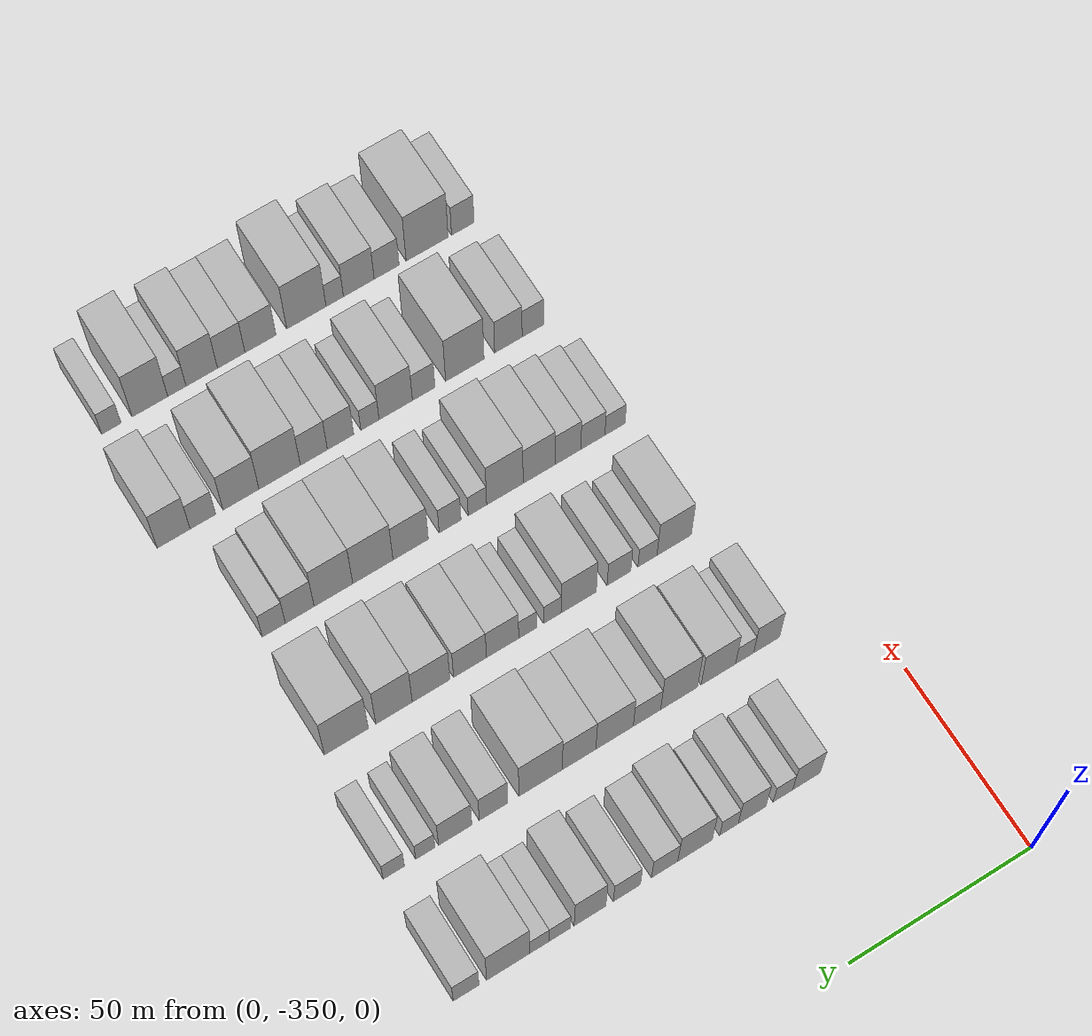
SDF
<sdf version="1.6">
 <world name="default">
  <model name="building_26">
   <static>1</static>
   <pose>50.0000 -315.4722 0 0.000000 0.000000 0.000000</pose>
   <link name="link">
    <pose>0 0 9.00 0 0 0</pose>
    <collision name="collision"><geometry><box><size>20.0000 7.5762 18.0000</size></box></geometry></collision>
    <visual name="visual">
     <cast_shadows>0</cast_shadows>
     <geometry><box><size>20.0000 7.5762 18.0000</size></box></geometry>
     <material>
      <script>
       <uri>model://HANNAS_wall/materials/scripts</uri>
       <uri>model://HANNAS_wall/materials/textures</uri>
       <name>vrc/HANNAS_wall</name>
      </script>
     </material>
    </visual>
   </link>
  </model>
  <model name="building_27">
   <static>1</static>
   <pose>50.0000 -309.0196 0 0.000000 0.000000 0.000000</pose>
   <link name="link">
    <pose>0 0 6.00 0 0 0</pose>
    <collision name="collision"><geometry><box><size>20.0000 5.3289 12.0000</size></box></geometry></collision>
    <visual name="visual">
     <cast_shadows>0</cast_shadows>
     <geometry><box><size>20.0000 5.3289 12.0000</size></box></geometry>
     <material>
      <script>
       <uri>model://HANNAS_wall/materials/scripts</uri>
       <uri>model://HANNAS_wall/materials/textures</uri>
       <name>vrc/HANNAS_wall</name>
      </script>
     </material>
    </visual>
   </link>
  </model>
  <model name="building_28">
   <static>1</static>
   <pose>50.0000 -300.5879 0 0.000000 0.000000 0.000000</pose>
   <link name="link">
    <pose>0 0 9.00 0 0 0</pose>
    <collision name="collision"><geometry><box><size>20.0000 7.5346 18.0000</size></box></geometry></collision>
    <visual name="visual">
     <cast_shadows>0</cast_shadows>
     <geometry><box><size>20.0000 7.5346 18.0000</size></box></geometry>
     <material>
      <script>
       <uri>model://HANNAS_wall/materials/scripts</uri>
       <uri>model://HANNAS_wall/materials/textures</uri>
       <name>vrc/HANNAS_wall</name>
      </script>
     </material>
    </visual>
   </link>
  </model>
  <model name="building_29">
   <static>1</static>
   <pose>50.0000 -294.2849 0 0.000000 0.000000 0.000000</pose>
   <link name="link">
    <pose>0 0 6.00 0 0 0</pose>
    <collision name="collision"><geometry><box><size>20.0000 5.0713 12.0000</size></box></geometry></collision>
    <visual name="visual">
     <cast_shadows>0</cast_shadows>
     <geometry><box><size>20.0000 5.0713 12.0000</size></box></geometry>
     <material>
      <script>
       <uri>model://HANNAS_wall/materials/scripts</uri>
       <uri>model://HANNAS_wall/materials/textures</uri>
       <name>vrc/HANNAS_wall</name>
      </script>
     </material>
    </visual>
   </link>
  </model>
  <model name="building_30">
   <static>1</static>
   <pose>50.0000 -285.0943 0 0.000000 0.000000 0.000000</pose>
   <link name="link">
    <pose>0 0 10.50 0 0 0</pose>
    <collision name="collision"><geometry><box><size>20.0000 9.3099 21.0000</size></box></geometry></collision>
    <visual name="visual">
     <cast_shadows>0</cast_shadows>
     <geometry><box><size>20.0000 9.3099 21.0000</size></box></geometry>
     <material>
      <script>
       <uri>model://HANNAS_wall/materials/scripts</uri>
       <uri>model://HANNAS_wall/materials/textures</uri>
       <name>vrc/HANNAS_wall</name>
      </script>
     </material>
    </visual>
   </link>
  </model>
  <model name="building_31">
   <static>1</static>
   <pose>50.0000 -276.8961 0 0.000000 0.000000 0.000000</pose>
   <link name="link">
    <pose>0 0 7.50 0 0 0</pose>
    <collision name="collision"><geometry><box><size>20.0000 7.0864 15.0000</size></box></geometry></collision>
    <visual name="visual">
     <cast_shadows>0</cast_shadows>
     <geometry><box><size>20.0000 7.0864 15.0000</size></box></geometry>
     <material>
      <script>
       <uri>model://HANNAS_wall/materials/scripts</uri>
       <uri>model://HANNAS_wall/materials/textures</uri>
       <name>vrc/HANNAS_wall</name>
      </script>
     </material>
    </visual>
   </link>
  </model>
  <model name="building_32">
   <static>1</static>
   <pose>50.0000 -266.7148 0 0.000000 0.000000 0.000000</pose>
   <link name="link">
    <pose>0 0 7.50 0 0 0</pose>
    <collision name="collision"><geometry><box><size>20.0000 7.2762 15.0000</size></box></geometry></collision>
    <visual name="visual">
     <cast_shadows>0</cast_shadows>
     <geometry><box><size>20.0000 7.2762 15.0000</size></box></geometry>
     <material>
      <script>
       <uri>model://HANNAS_wall/materials/scripts</uri>
       <uri>model://HANNAS_wall/materials/textures</uri>
       <name>vrc/HANNAS_wall</name>
      </script>
     </material>
    </visual>
   </link>
  </model>
  <model name="building_33">
   <static>1</static>
   <pose>50.0000 -256.8597 0 0.000000 0.000000 0.000000</pose>
   <link name="link">
    <pose>0 0 10.50 0 0 0</pose>
    <collision name="collision"><geometry><box><size>20.0000 8.4340 21.0000</size></box></geometry></collision>
    <visual name="visual">
     <cast_shadows>0</cast_shadows>
     <geometry><box><size>20.0000 8.4340 21.0000</size></box></geometry>
     <material>
      <script>
       <uri>model://HANNAS_wall/materials/scripts</uri>
       <uri>model://HANNAS_wall/materials/textures</uri>
       <name>vrc/HANNAS_wall</name>
      </script>
     </material>
    </visual>
   </link>
  </model>
  <model name="building_34">
   <static>1</static>
   <pose>50.0000 -248.8323 0 0.000000 0.000000 0.000000</pose>
   <link name="link">
    <pose>0 0 6.00 0 0 0</pose>
    <collision name="collision"><geometry><box><size>20.0000 5.6208 12.0000</size></box></geometry></collision>
    <visual name="visual">
     <cast_shadows>0</cast_shadows>
     <geometry><box><size>20.0000 5.6208 12.0000</size></box></geometry>
     <material>
      <script>
       <uri>model://HANNAS_wall/materials/scripts</uri>
       <uri>model://HANNAS_wall/materials/textures</uri>
       <name>vrc/HANNAS_wall</name>
      </script>
     </material>
    </visual>
   </link>
  </model>
  <model name="building_35">
   <static>1</static>
   <pose>50.0000 -243.4255 0 0.000000 0.000000 0.000000</pose>
   <link name="link">
    <pose>0 0 6.00 0 0 0</pose>
    <collision name="collision"><geometry><box><size>20.0000 5.1930 12.0000</size></box></geometry></collision>
    <visual name="visual">
     <cast_shadows>0</cast_shadows>
     <geometry><box><size>20.0000 5.1930 12.0000</size></box></geometry>
     <material>
      <script>
       <uri>model://HANNAS_wall/materials/scripts</uri>
       <uri>model://HANNAS_wall/materials/textures</uri>
       <name>vrc/HANNAS_wall</name>
      </script>
     </material>
    </visual>
   </link>
  </model>
  <model name="building_36">
   <static>1</static>
   <pose>50.0000 -235.1655 0 0.000000 0.000000 0.000000</pose>
   <link name="link">
    <pose>0 0 12.00 0 0 0</pose>
    <collision name="collision"><geometry><box><size>20.0000 11.3268 24.0000</size></box></geometry></collision>
    <visual name="visual">
     <cast_shadows>0</cast_shadows>
     <geometry><box><size>20.0000 11.3268 24.0000</size></box></geometry>
     <material>
      <script>
       <uri>model://HANNAS_wall/materials/scripts</uri>
       <uri>model://HANNAS_wall/materials/textures</uri>
       <name>vrc/HANNAS_wall</name>
      </script>
     </material>
    </visual>
   </link>
  </model>
  <model name="building_37">
   <static>1</static>
   <pose>50.0000 -224.1235 0 0.000000 0.000000 0.000000</pose>
   <link name="link">
    <pose>0 0 7.50 0 0 0</pose>
    <collision name="collision"><geometry><box><size>20.0000 6.7573 15.0000</size></box></geometry></collision>
    <visual name="visual">
     <cast_shadows>0</cast_shadows>
     <geometry><box><size>20.0000 6.7573 15.0000</size></box></geometry>
     <material>
      <script>
       <uri>model://HANNAS_wall/materials/scripts</uri>
       <uri>model://HANNAS_wall/materials/textures</uri>
       <name>vrc/HANNAS_wall</name>
      </script>
     </material>
    </visual>
   </link>
  </model>
  <model name="building_147">
   <static>1</static>
   <pose>82.0000 -325.9047 0 0.000000 0.000000 0.000000</pose>
   <link name="link">
    <pose>0 0 9.00 0 0 0</pose>
    <collision name="collision"><geometry><box><size>20.0000 7.2224 18.0000</size></box></geometry></collision>
    <visual name="visual">
     <cast_shadows>0</cast_shadows>
     <geometry><box><size>20.0000 7.2224 18.0000</size></box></geometry>
     <material>
      <script>
       <uri>model://HANNAS_wall/materials/scripts</uri>
       <uri>model://HANNAS_wall/materials/textures</uri>
       <name>vrc/HANNAS_wall</name>
      </script>
     </material>
    </visual>
   </link>
  </model>
  <model name="building_148">
   <static>1</static>
   <pose>82.0000 -319.7768 0 0.000000 0.000000 0.000000</pose>
   <link name="link">
    <pose>0 0 6.00 0 0 0</pose>
    <collision name="collision"><geometry><box><size>20.0000 5.0333 12.0000</size></box></geometry></collision>
    <visual name="visual">
     <cast_shadows>0</cast_shadows>
     <geometry><box><size>20.0000 5.0333 12.0000</size></box></geometry>
     <material>
      <script>
       <uri>model://HANNAS_wall/materials/scripts</uri>
       <uri>model://HANNAS_wall/materials/textures</uri>
       <name>vrc/HANNAS_wall</name>
      </script>
     </material>
    </visual>
   </link>
  </model>
  <model name="building_149">
   <static>1</static>
   <pose>82.0000 -312.5025 0 0.000000 0.000000 0.000000</pose>
   <link name="link">
    <pose>0 0 10.50 0 0 0</pose>
    <collision name="collision"><geometry><box><size>20.0000 9.5154 21.0000</size></box></geometry></collision>
    <visual name="visual">
     <cast_shadows>0</cast_shadows>
     <geometry><box><size>20.0000 9.5154 21.0000</size></box></geometry>
     <material>
      <script>
       <uri>model://HANNAS_wall/materials/scripts</uri>
       <uri>model://HANNAS_wall/materials/textures</uri>
       <name>vrc/HANNAS_wall</name>
      </script>
     </material>
    </visual>
   </link>
  </model>
  <model name="building_150">
   <static>1</static>
   <pose>82.0000 -301.6647 0 0.000000 0.000000 0.000000</pose>
   <link name="link">
    <pose>0 0 12.00 0 0 0</pose>
    <collision name="collision"><geometry><box><size>20.0000 10.1601 24.0000</size></box></geometry></collision>
    <visual name="visual">
     <cast_shadows>0</cast_shadows>
     <geometry><box><size>20.0000 10.1601 24.0000</size></box></geometry>
     <material>
      <script>
       <uri>model://HANNAS_wall/materials/scripts</uri>
       <uri>model://HANNAS_wall/materials/textures</uri>
       <name>vrc/HANNAS_wall</name>
      </script>
     </material>
    </visual>
   </link>
  </model>
  <model name="building_151">
   <static>1</static>
   <pose>82.0000 -292.8367 0 0.000000 0.000000 0.000000</pose>
   <link name="link">
    <pose>0 0 7.50 0 0 0</pose>
    <collision name="collision"><geometry><box><size>20.0000 7.4959 15.0000</size></box></geometry></collision>
    <visual name="visual">
     <cast_shadows>0</cast_shadows>
     <geometry><box><size>20.0000 7.4959 15.0000</size></box></geometry>
     <material>
      <script>
       <uri>model://HANNAS_wall/materials/scripts</uri>
       <uri>model://HANNAS_wall/materials/textures</uri>
       <name>vrc/HANNAS_wall</name>
      </script>
     </material>
    </visual>
   </link>
  </model>
  <model name="building_152">
   <static>1</static>
   <pose>82.0000 -283.9861 0 0.000000 0.000000 0.000000</pose>
   <link name="link">
    <pose>0 0 10.50 0 0 0</pose>
    <collision name="collision"><geometry><box><size>20.0000 10.2051 21.0000</size></box></geometry></collision>
    <visual name="visual">
     <cast_shadows>0</cast_shadows>
     <geometry><box><size>20.0000 10.2051 21.0000</size></box></geometry>
     <material>
      <script>
       <uri>model://HANNAS_wall/materials/scripts</uri>
       <uri>model://HANNAS_wall/materials/textures</uri>
       <name>vrc/HANNAS_wall</name>
      </script>
     </material>
    </visual>
   </link>
  </model>
  <model name="building_153">
   <static>1</static>
   <pose>82.0000 -274.3161 0 0.000000 0.000000 0.000000</pose>
   <link name="link">
    <pose>0 0 10.50 0 0 0</pose>
    <collision name="collision"><geometry><box><size>20.0000 9.1350 21.0000</size></box></geometry></collision>
    <visual name="visual">
     <cast_shadows>0</cast_shadows>
     <geometry><box><size>20.0000 9.1350 21.0000</size></box></geometry>
     <material>
      <script>
       <uri>model://HANNAS_wall/materials/scripts</uri>
       <uri>model://HANNAS_wall/materials/textures</uri>
       <name>vrc/HANNAS_wall</name>
      </script>
     </material>
    </visual>
   </link>
  </model>
  <model name="building_154">
   <static>1</static>
   <pose>82.0000 -263.9034 0 0.000000 0.000000 0.000000</pose>
   <link name="link">
    <pose>0 0 12.00 0 0 0</pose>
    <collision name="collision"><geometry><box><size>20.0000 11.6902 24.0000</size></box></geometry></collision>
    <visual name="visual">
     <cast_shadows>0</cast_shadows>
     <geometry><box><size>20.0000 11.6902 24.0000</size></box></geometry>
     <material>
      <script>
       <uri>model://HANNAS_wall/materials/scripts</uri>
       <uri>model://HANNAS_wall/materials/textures</uri>
       <name>vrc/HANNAS_wall</name>
      </script>
     </material>
    </visual>
   </link>
  </model>
  <model name="building_155">
   <static>1</static>
   <pose>82.0000 -251.2554 0 0.000000 0.000000 0.000000</pose>
   <link name="link">
    <pose>0 0 9.00 0 0 0</pose>
    <collision name="collision"><geometry><box><size>20.0000 7.6059 18.0000</size></box></geometry></collision>
    <visual name="visual">
     <cast_shadows>0</cast_shadows>
     <geometry><box><size>20.0000 7.6059 18.0000</size></box></geometry>
     <material>
      <script>
       <uri>model://HANNAS_wall/materials/scripts</uri>
       <uri>model://HANNAS_wall/materials/textures</uri>
       <name>vrc/HANNAS_wall</name>
      </script>
     </material>
    </visual>
   </link>
  </model>
  <model name="building_156">
   <static>1</static>
   <pose>82.0000 -241.0361 0 0.000000 0.000000 0.000000</pose>
   <link name="link">
    <pose>0 0 9.00 0 0 0</pose>
    <collision name="collision"><geometry><box><size>20.0000 8.8327 18.0000</size></box></geometry></collision>
    <visual name="visual">
     <cast_shadows>0</cast_shadows>
     <geometry><box><size>20.0000 8.8327 18.0000</size></box></geometry>
     <material>
      <script>
       <uri>model://HANNAS_wall/materials/scripts</uri>
       <uri>model://HANNAS_wall/materials/textures</uri>
       <name>vrc/HANNAS_wall</name>
      </script>
     </material>
    </visual>
   </link>
  </model>
  <model name="building_157">
   <static>1</static>
   <pose>82.0000 -233.0860 0 0.000000 0.000000 0.000000</pose>
   <link name="link">
    <pose>0 0 6.00 0 0 0</pose>
    <collision name="collision"><geometry><box><size>20.0000 5.0675 12.0000</size></box></geometry></collision>
    <visual name="visual">
     <cast_shadows>0</cast_shadows>
     <geometry><box><size>20.0000 5.0675 12.0000</size></box></geometry>
     <material>
      <script>
       <uri>model://HANNAS_wall/materials/scripts</uri>
       <uri>model://HANNAS_wall/materials/textures</uri>
       <name>vrc/HANNAS_wall</name>
      </script>
     </material>
    </visual>
   </link>
  </model>
  <model name="building_158">
   <static>1</static>
   <pose>82.0000 -224.7359 0 0.000000 0.000000 0.000000</pose>
   <link name="link">
    <pose>0 0 6.00 0 0 0</pose>
    <collision name="collision"><geometry><box><size>20.0000 5.6326 12.0000</size></box></geometry></collision>
    <visual name="visual">
     <cast_shadows>0</cast_shadows>
     <geometry><box><size>20.0000 5.6326 12.0000</size></box></geometry>
     <material>
      <script>
       <uri>model://HANNAS_wall/materials/scripts</uri>
       <uri>model://HANNAS_wall/materials/textures</uri>
       <name>vrc/HANNAS_wall</name>
      </script>
     </material>
    </visual>
   </link>
  </model>
  <model name="building_263">
   <static>1</static>
   <pose>114.0000 -321.1570 0 0.000000 0.000000 0.000000</pose>
   <link name="link">
    <pose>0 0 10.50 0 0 0</pose>
    <collision name="collision"><geometry><box><size>20.0000 9.5963 21.0000</size></box></geometry></collision>
    <visual name="visual">
     <cast_shadows>0</cast_shadows>
     <geometry><box><size>20.0000 9.5963 21.0000</size></box></geometry>
     <material>
      <script>
       <uri>model://HANNAS_wall/materials/scripts</uri>
       <uri>model://HANNAS_wall/materials/textures</uri>
       <name>vrc/HANNAS_wall</name>
      </script>
     </material>
    </visual>
   </link>
  </model>
  <model name="building_264">
   <static>1</static>
   <pose>114.0000 -313.6998 0 0.000000 0.000000 0.000000</pose>
   <link name="link">
    <pose>0 0 6.00 0 0 0</pose>
    <collision name="collision"><geometry><box><size>20.0000 5.3181 12.0000</size></box></geometry></collision>
    <visual name="visual">
     <cast_shadows>0</cast_shadows>
     <geometry><box><size>20.0000 5.3181 12.0000</size></box></geometry>
     <material>
      <script>
       <uri>model://HANNAS_wall/materials/scripts</uri>
       <uri>model://HANNAS_wall/materials/textures</uri>
       <name>vrc/HANNAS_wall</name>
      </script>
     </material>
    </visual>
   </link>
  </model>
  <model name="building_265">
   <static>1</static>
   <pose>114.0000 -305.7494 0 0.000000 0.000000 0.000000</pose>
   <link name="link">
    <pose>0 0 7.50 0 0 0</pose>
    <collision name="collision"><geometry><box><size>20.0000 6.5827 15.0000</size></box></geometry></collision>
    <visual name="visual">
     <cast_shadows>0</cast_shadows>
     <geometry><box><size>20.0000 6.5827 15.0000</size></box></geometry>
     <material>
      <script>
       <uri>model://HANNAS_wall/materials/scripts</uri>
       <uri>model://HANNAS_wall/materials/textures</uri>
       <name>vrc/HANNAS_wall</name>
      </script>
     </material>
    </visual>
   </link>
  </model>
  <model name="building_266">
   <static>1</static>
   <pose>114.0000 -294.5962 0 0.000000 0.000000 0.000000</pose>
   <link name="link">
    <pose>0 0 10.50 0 0 0</pose>
    <collision name="collision"><geometry><box><size>20.0000 9.7236 21.0000</size></box></geometry></collision>
    <visual name="visual">
     <cast_shadows>0</cast_shadows>
     <geometry><box><size>20.0000 9.7236 21.0000</size></box></geometry>
     <material>
      <script>
       <uri>model://HANNAS_wall/materials/scripts</uri>
       <uri>model://HANNAS_wall/materials/textures</uri>
       <name>vrc/HANNAS_wall</name>
      </script>
     </material>
    </visual>
   </link>
  </model>
  <model name="building_267">
   <static>1</static>
   <pose>114.0000 -287.3215 0 0.000000 0.000000 0.000000</pose>
   <link name="link">
    <pose>0 0 6.00 0 0 0</pose>
    <collision name="collision"><geometry><box><size>20.0000 4.8258 12.0000</size></box></geometry></collision>
    <visual name="visual">
     <cast_shadows>0</cast_shadows>
     <geometry><box><size>20.0000 4.8258 12.0000</size></box></geometry>
     <material>
      <script>
       <uri>model://HANNAS_wall/materials/scripts</uri>
       <uri>model://HANNAS_wall/materials/textures</uri>
       <name>vrc/HANNAS_wall</name>
      </script>
     </material>
    </visual>
   </link>
  </model>
  <model name="building_268">
   <static>1</static>
   <pose>114.0000 -280.4950 0 0.000000 0.000000 0.000000</pose>
   <link name="link">
    <pose>0 0 6.00 0 0 0</pose>
    <collision name="collision"><geometry><box><size>20.0000 4.8273 12.0000</size></box></geometry></collision>
    <visual name="visual">
     <cast_shadows>0</cast_shadows>
     <geometry><box><size>20.0000 4.8273 12.0000</size></box></geometry>
     <material>
      <script>
       <uri>model://HANNAS_wall/materials/scripts</uri>
       <uri>model://HANNAS_wall/materials/textures</uri>
       <name>vrc/HANNAS_wall</name>
      </script>
     </material>
    </visual>
   </link>
  </model>
  <model name="building_269">
   <static>1</static>
   <pose>114.0000 -273.6799 0 0.000000 0.000000 0.000000</pose>
   <link name="link">
    <pose>0 0 9.00 0 0 0</pose>
    <collision name="collision"><geometry><box><size>20.0000 8.8029 18.0000</size></box></geometry></collision>
    <visual name="visual">
     <cast_shadows>0</cast_shadows>
     <geometry><box><size>20.0000 8.8029 18.0000</size></box></geometry>
     <material>
      <script>
       <uri>model://HANNAS_wall/materials/scripts</uri>
       <uri>model://HANNAS_wall/materials/textures</uri>
       <name>vrc/HANNAS_wall</name>
      </script>
     </material>
    </visual>
   </link>
  </model>
  <model name="building_270">
   <static>1</static>
   <pose>114.0000 -264.8125 0 0.000000 0.000000 0.000000</pose>
   <link name="link">
    <pose>0 0 9.00 0 0 0</pose>
    <collision name="collision"><geometry><box><size>20.0000 8.9320 18.0000</size></box></geometry></collision>
    <visual name="visual">
     <cast_shadows>0</cast_shadows>
     <geometry><box><size>20.0000 8.9320 18.0000</size></box></geometry>
     <material>
      <script>
       <uri>model://HANNAS_wall/materials/scripts</uri>
       <uri>model://HANNAS_wall/materials/textures</uri>
       <name>vrc/HANNAS_wall</name>
      </script>
     </material>
    </visual>
   </link>
  </model>
  <model name="building_271">
   <static>1</static>
   <pose>114.0000 -254.2578 0 0.000000 0.000000 0.000000</pose>
   <link name="link">
    <pose>0 0 10.50 0 0 0</pose>
    <collision name="collision"><geometry><box><size>20.0000 10.1773 21.0000</size></box></geometry></collision>
    <visual name="visual">
     <cast_shadows>0</cast_shadows>
     <geometry><box><size>20.0000 10.1773 21.0000</size></box></geometry>
     <material>
      <script>
       <uri>model://HANNAS_wall/materials/scripts</uri>
       <uri>model://HANNAS_wall/materials/textures</uri>
       <name>vrc/HANNAS_wall</name>
      </script>
     </material>
    </visual>
   </link>
  </model>
  <model name="building_272">
   <static>1</static>
   <pose>114.0000 -244.2541 0 0.000000 0.000000 0.000000</pose>
   <link name="link">
    <pose>0 0 12.00 0 0 0</pose>
    <collision name="collision"><geometry><box><size>20.0000 9.8301 24.0000</size></box></geometry></collision>
    <visual name="visual">
     <cast_shadows>0</cast_shadows>
     <geometry><box><size>20.0000 9.8301 24.0000</size></box></geometry>
     <material>
      <script>
       <uri>model://HANNAS_wall/materials/scripts</uri>
       <uri>model://HANNAS_wall/materials/textures</uri>
       <name>vrc/HANNAS_wall</name>
      </script>
     </material>
    </visual>
   </link>
  </model>
  <model name="building_273">
   <static>1</static>
   <pose>114.0000 -231.4570 0 0.000000 0.000000 0.000000</pose>
   <link name="link">
    <pose>0 0 12.00 0 0 0</pose>
    <collision name="collision"><geometry><box><size>20.0000 11.7640 24.0000</size></box></geometry></collision>
    <visual name="visual">
     <cast_shadows>0</cast_shadows>
     <geometry><box><size>20.0000 11.7640 24.0000</size></box></geometry>
     <material>
      <script>
       <uri>model://HANNAS_wall/materials/scripts</uri>
       <uri>model://HANNAS_wall/materials/textures</uri>
       <name>vrc/HANNAS_wall</name>
      </script>
     </material>
    </visual>
   </link>
  </model>
  <model name="building_383">
   <static>1</static>
   <pose>146.0000 -325.2021 0 0.000000 0.000000 0.000000</pose>
   <link name="link">
    <pose>0 0 6.00 0 0 0</pose>
    <collision name="collision"><geometry><box><size>20.0000 5.6984 12.0000</size></box></geometry></collision>
    <visual name="visual">
     <cast_shadows>0</cast_shadows>
     <geometry><box><size>20.0000 5.6984 12.0000</size></box></geometry>
     <material>
      <script>
       <uri>model://HANNAS_wall/materials/scripts</uri>
       <uri>model://HANNAS_wall/materials/textures</uri>
       <name>vrc/HANNAS_wall</name>
      </script>
     </material>
    </visual>
   </link>
  </model>
  <model name="building_384">
   <static>1</static>
   <pose>146.0000 -318.9389 0 0.000000 0.000000 0.000000</pose>
   <link name="link">
    <pose>0 0 7.50 0 0 0</pose>
    <collision name="collision"><geometry><box><size>20.0000 6.8280 15.0000</size></box></geometry></collision>
    <visual name="visual">
     <cast_shadows>0</cast_shadows>
     <geometry><box><size>20.0000 6.8280 15.0000</size></box></geometry>
     <material>
      <script>
       <uri>model://HANNAS_wall/materials/scripts</uri>
       <uri>model://HANNAS_wall/materials/textures</uri>
       <name>vrc/HANNAS_wall</name>
      </script>
     </material>
    </visual>
   </link>
  </model>
  <model name="building_385">
   <static>1</static>
   <pose>146.0000 -311.9153 0 0.000000 0.000000 0.000000</pose>
   <link name="link">
    <pose>0 0 9.00 0 0 0</pose>
    <collision name="collision"><geometry><box><size>20.0000 7.2192 18.0000</size></box></geometry></collision>
    <visual name="visual">
     <cast_shadows>0</cast_shadows>
     <geometry><box><size>20.0000 7.2192 18.0000</size></box></geometry>
     <material>
      <script>
       <uri>model://HANNAS_wall/materials/scripts</uri>
       <uri>model://HANNAS_wall/materials/textures</uri>
       <name>vrc/HANNAS_wall</name>
      </script>
     </material>
    </visual>
   </link>
  </model>
  <model name="building_386">
   <static>1</static>
   <pose>146.0000 -303.8467 0 0.000000 0.000000 0.000000</pose>
   <link name="link">
    <pose>0 0 10.50 0 0 0</pose>
    <collision name="collision"><geometry><box><size>20.0000 8.9181 21.0000</size></box></geometry></collision>
    <visual name="visual">
     <cast_shadows>0</cast_shadows>
     <geometry><box><size>20.0000 8.9181 21.0000</size></box></geometry>
     <material>
      <script>
       <uri>model://HANNAS_wall/materials/scripts</uri>
       <uri>model://HANNAS_wall/materials/textures</uri>
       <name>vrc/HANNAS_wall</name>
      </script>
     </material>
    </visual>
   </link>
  </model>
  <model name="building_387">
   <static>1</static>
   <pose>146.0000 -294.3228 0 0.000000 0.000000 0.000000</pose>
   <link name="link">
    <pose>0 0 12.00 0 0 0</pose>
    <collision name="collision"><geometry><box><size>20.0000 10.1298 24.0000</size></box></geometry></collision>
    <visual name="visual">
     <cast_shadows>0</cast_shadows>
     <geometry><box><size>20.0000 10.1298 24.0000</size></box></geometry>
     <material>
      <script>
       <uri>model://HANNAS_wall/materials/scripts</uri>
       <uri>model://HANNAS_wall/materials/textures</uri>
       <name>vrc/HANNAS_wall</name>
      </script>
     </material>
    </visual>
   </link>
  </model>
  <model name="building_388">
   <static>1</static>
   <pose>146.0000 -286.6999 0 0.000000 0.000000 0.000000</pose>
   <link name="link">
    <pose>0 0 6.00 0 0 0</pose>
    <collision name="collision"><geometry><box><size>20.0000 5.1160 12.0000</size></box></geometry></collision>
    <visual name="visual">
     <cast_shadows>0</cast_shadows>
     <geometry><box><size>20.0000 5.1160 12.0000</size></box></geometry>
     <material>
      <script>
       <uri>model://HANNAS_wall/materials/scripts</uri>
       <uri>model://HANNAS_wall/materials/textures</uri>
       <name>vrc/HANNAS_wall</name>
      </script>
     </material>
    </visual>
   </link>
  </model>
  <model name="building_389">
   <static>1</static>
   <pose>146.0000 -279.1292 0 0.000000 0.000000 0.000000</pose>
   <link name="link">
    <pose>0 0 7.50 0 0 0</pose>
    <collision name="collision"><geometry><box><size>20.0000 6.0253 15.0000</size></box></geometry></collision>
    <visual name="visual">
     <cast_shadows>0</cast_shadows>
     <geometry><box><size>20.0000 6.0253 15.0000</size></box></geometry>
     <material>
      <script>
       <uri>model://HANNAS_wall/materials/scripts</uri>
       <uri>model://HANNAS_wall/materials/textures</uri>
       <name>vrc/HANNAS_wall</name>
      </script>
     </material>
    </visual>
   </link>
  </model>
  <model name="building_390">
   <static>1</static>
   <pose>146.0000 -268.2800 0 0.000000 0.000000 0.000000</pose>
   <link name="link">
    <pose>0 0 10.50 0 0 0</pose>
    <collision name="collision"><geometry><box><size>20.0000 9.6733 21.0000</size></box></geometry></collision>
    <visual name="visual">
     <cast_shadows>0</cast_shadows>
     <geometry><box><size>20.0000 9.6733 21.0000</size></box></geometry>
     <material>
      <script>
       <uri>model://HANNAS_wall/materials/scripts</uri>
       <uri>model://HANNAS_wall/materials/textures</uri>
       <name>vrc/HANNAS_wall</name>
      </script>
     </material>
    </visual>
   </link>
  </model>
  <model name="building_391">
   <static>1</static>
   <pose>146.0000 -257.9371 0 0.000000 0.000000 0.000000</pose>
   <link name="link">
    <pose>0 0 12.00 0 0 0</pose>
    <collision name="collision"><geometry><box><size>20.0000 11.0125 24.0000</size></box></geometry></collision>
    <visual name="visual">
     <cast_shadows>0</cast_shadows>
     <geometry><box><size>20.0000 11.0125 24.0000</size></box></geometry>
     <material>
      <script>
       <uri>model://HANNAS_wall/materials/scripts</uri>
       <uri>model://HANNAS_wall/materials/textures</uri>
       <name>vrc/HANNAS_wall</name>
      </script>
     </material>
    </visual>
   </link>
  </model>
  <model name="building_392">
   <static>1</static>
   <pose>146.0000 -247.1732 0 0.000000 0.000000 0.000000</pose>
   <link name="link">
    <pose>0 0 12.00 0 0 0</pose>
    <collision name="collision"><geometry><box><size>20.0000 10.5151 24.0000</size></box></geometry></collision>
    <visual name="visual">
     <cast_shadows>0</cast_shadows>
     <geometry><box><size>20.0000 10.5151 24.0000</size></box></geometry>
     <material>
      <script>
       <uri>model://HANNAS_wall/materials/scripts</uri>
       <uri>model://HANNAS_wall/materials/textures</uri>
       <name>vrc/HANNAS_wall</name>
      </script>
     </material>
    </visual>
   </link>
  </model>
  <model name="building_393">
   <static>1</static>
   <pose>146.0000 -238.0398 0 0.000000 0.000000 0.000000</pose>
   <link name="link">
    <pose>0 0 9.00 0 0 0</pose>
    <collision name="collision"><geometry><box><size>20.0000 7.7518 18.0000</size></box></geometry></collision>
    <visual name="visual">
     <cast_shadows>0</cast_shadows>
     <geometry><box><size>20.0000 7.7518 18.0000</size></box></geometry>
     <material>
      <script>
       <uri>model://HANNAS_wall/materials/scripts</uri>
       <uri>model://HANNAS_wall/materials/textures</uri>
       <name>vrc/HANNAS_wall</name>
      </script>
     </material>
    </visual>
   </link>
  </model>
  <model name="building_394">
   <static>1</static>
   <pose>146.0000 -231.0383 0 0.000000 0.000000 0.000000</pose>
   <link name="link">
    <pose>0 0 7.50 0 0 0</pose>
    <collision name="collision"><geometry><box><size>20.0000 6.2513 15.0000</size></box></geometry></collision>
    <visual name="visual">
     <cast_shadows>0</cast_shadows>
     <geometry><box><size>20.0000 6.2513 15.0000</size></box></geometry>
     <material>
      <script>
       <uri>model://HANNAS_wall/materials/scripts</uri>
       <uri>model://HANNAS_wall/materials/textures</uri>
       <name>vrc/HANNAS_wall</name>
      </script>
     </material>
    </visual>
   </link>
  </model>
  <model name="building_499">
   <static>1</static>
   <pose>178.0000 -322.2326 0 0.000000 0.000000 0.000000</pose>
   <link name="link">
    <pose>0 0 7.50 0 0 0</pose>
    <collision name="collision"><geometry><box><size>20.0000 6.0380 15.0000</size></box></geometry></collision>
    <visual name="visual">
     <cast_shadows>0</cast_shadows>
     <geometry><box><size>20.0000 6.0380 15.0000</size></box></geometry>
     <material>
      <script>
       <uri>model://HANNAS_wall/materials/scripts</uri>
       <uri>model://HANNAS_wall/materials/textures</uri>
       <name>vrc/HANNAS_wall</name>
      </script>
     </material>
    </visual>
   </link>
  </model>
  <model name="building_500">
   <static>1</static>
   <pose>178.0000 -315.3200 0 0.000000 0.000000 0.000000</pose>
   <link name="link">
    <pose>0 0 9.00 0 0 0</pose>
    <collision name="collision"><geometry><box><size>20.0000 7.7871 18.0000</size></box></geometry></collision>
    <visual name="visual">
     <cast_shadows>0</cast_shadows>
     <geometry><box><size>20.0000 7.7871 18.0000</size></box></geometry>
     <material>
      <script>
       <uri>model://HANNAS_wall/materials/scripts</uri>
       <uri>model://HANNAS_wall/materials/textures</uri>
       <name>vrc/HANNAS_wall</name>
      </script>
     </material>
    </visual>
   </link>
  </model>
  <model name="building_501">
   <static>1</static>
   <pose>178.0000 -303.0164 0 0.000000 0.000000 0.000000</pose>
   <link name="link">
    <pose>0 0 12.00 0 0 0</pose>
    <collision name="collision"><geometry><box><size>20.0000 10.8203 24.0000</size></box></geometry></collision>
    <visual name="visual">
     <cast_shadows>0</cast_shadows>
     <geometry><box><size>20.0000 10.8203 24.0000</size></box></geometry>
     <material>
      <script>
       <uri>model://HANNAS_wall/materials/scripts</uri>
       <uri>model://HANNAS_wall/materials/textures</uri>
       <name>vrc/HANNAS_wall</name>
      </script>
     </material>
    </visual>
   </link>
  </model>
  <model name="building_502">
   <static>1</static>
   <pose>178.0000 -291.4520 0 0.000000 0.000000 0.000000</pose>
   <link name="link">
    <pose>0 0 7.50 0 0 0</pose>
    <collision name="collision"><geometry><box><size>20.0000 6.3086 15.0000</size></box></geometry></collision>
    <visual name="visual">
     <cast_shadows>0</cast_shadows>
     <geometry><box><size>20.0000 6.3086 15.0000</size></box></geometry>
     <material>
      <script>
       <uri>model://HANNAS_wall/materials/scripts</uri>
       <uri>model://HANNAS_wall/materials/textures</uri>
       <name>vrc/HANNAS_wall</name>
      </script>
     </material>
    </visual>
   </link>
  </model>
  <model name="building_503">
   <static>1</static>
   <pose>178.0000 -283.6407 0 0.000000 0.000000 0.000000</pose>
   <link name="link">
    <pose>0 0 10.50 0 0 0</pose>
    <collision name="collision"><geometry><box><size>20.0000 9.3139 21.0000</size></box></geometry></collision>
    <visual name="visual">
     <cast_shadows>0</cast_shadows>
     <geometry><box><size>20.0000 9.3139 21.0000</size></box></geometry>
     <material>
      <script>
       <uri>model://HANNAS_wall/materials/scripts</uri>
       <uri>model://HANNAS_wall/materials/textures</uri>
       <name>vrc/HANNAS_wall</name>
      </script>
     </material>
    </visual>
   </link>
  </model>
  <model name="building_504">
   <static>1</static>
   <pose>178.0000 -276.4638 0 0.000000 0.000000 0.000000</pose>
   <link name="link">
    <pose>0 0 6.00 0 0 0</pose>
    <collision name="collision"><geometry><box><size>20.0000 5.0398 12.0000</size></box></geometry></collision>
    <visual name="visual">
     <cast_shadows>0</cast_shadows>
     <geometry><box><size>20.0000 5.0398 12.0000</size></box></geometry>
     <material>
      <script>
       <uri>model://HANNAS_wall/materials/scripts</uri>
       <uri>model://HANNAS_wall/materials/textures</uri>
       <name>vrc/HANNAS_wall</name>
      </script>
     </material>
    </visual>
   </link>
  </model>
  <model name="building_505">
   <static>1</static>
   <pose>178.0000 -268.3024 0 0.000000 0.000000 0.000000</pose>
   <link name="link">
    <pose>0 0 9.00 0 0 0</pose>
    <collision name="collision"><geometry><box><size>20.0000 7.2831 18.0000</size></box></geometry></collision>
    <visual name="visual">
     <cast_shadows>0</cast_shadows>
     <geometry><box><size>20.0000 7.2831 18.0000</size></box></geometry>
     <material>
      <script>
       <uri>model://HANNAS_wall/materials/scripts</uri>
       <uri>model://HANNAS_wall/materials/textures</uri>
       <name>vrc/HANNAS_wall</name>
      </script>
     </material>
    </visual>
   </link>
  </model>
  <model name="building_506">
   <static>1</static>
   <pose>178.0000 -260.9269 0 0.000000 0.000000 0.000000</pose>
   <link name="link">
    <pose>0 0 9.00 0 0 0</pose>
    <collision name="collision"><geometry><box><size>20.0000 7.4679 18.0000</size></box></geometry></collision>
    <visual name="visual">
     <cast_shadows>0</cast_shadows>
     <geometry><box><size>20.0000 7.4679 18.0000</size></box></geometry>
     <material>
      <script>
       <uri>model://HANNAS_wall/materials/scripts</uri>
       <uri>model://HANNAS_wall/materials/textures</uri>
       <name>vrc/HANNAS_wall</name>
      </script>
     </material>
    </visual>
   </link>
  </model>
  <model name="building_507">
   <static>1</static>
   <pose>178.0000 -251.5140 0 0.000000 0.000000 0.000000</pose>
   <link name="link">
    <pose>0 0 12.00 0 0 0</pose>
    <collision name="collision"><geometry><box><size>20.0000 11.3580 24.0000</size></box></geometry></collision>
    <visual name="visual">
     <cast_shadows>0</cast_shadows>
     <geometry><box><size>20.0000 11.3580 24.0000</size></box></geometry>
     <material>
      <script>
       <uri>model://HANNAS_wall/materials/scripts</uri>
       <uri>model://HANNAS_wall/materials/textures</uri>
       <name>vrc/HANNAS_wall</name>
      </script>
     </material>
    </visual>
   </link>
  </model>
  <model name="building_508">
   <static>1</static>
   <pose>178.0000 -240.9225 0 0.000000 0.000000 0.000000</pose>
   <link name="link">
    <pose>0 0 10.50 0 0 0</pose>
    <collision name="collision"><geometry><box><size>20.0000 9.8249 21.0000</size></box></geometry></collision>
    <visual name="visual">
     <cast_shadows>0</cast_shadows>
     <geometry><box><size>20.0000 9.8249 21.0000</size></box></geometry>
     <material>
      <script>
       <uri>model://HANNAS_wall/materials/scripts</uri>
       <uri>model://HANNAS_wall/materials/textures</uri>
       <name>vrc/HANNAS_wall</name>
      </script>
     </material>
    </visual>
   </link>
  </model>
  <model name="building_509">
   <static>1</static>
   <pose>178.0000 -230.5326 0 0.000000 0.000000 0.000000</pose>
   <link name="link">
    <pose>0 0 7.50 0 0 0</pose>
    <collision name="collision"><geometry><box><size>20.0000 6.9550 15.0000</size></box></geometry></collision>
    <visual name="visual">
     <cast_shadows>0</cast_shadows>
     <geometry><box><size>20.0000 6.9550 15.0000</size></box></geometry>
     <material>
      <script>
       <uri>model://HANNAS_wall/materials/scripts</uri>
       <uri>model://HANNAS_wall/materials/textures</uri>
       <name>vrc/HANNAS_wall</name>
      </script>
     </material>
    </visual>
   </link>
  </model>
  <model name="building_510">
   <static>1</static>
   <pose>178.0000 -222.5883 0 0.000000 0.000000 0.000000</pose>
   <link name="link">
    <pose>0 0 10.50 0 0 0</pose>
    <collision name="collision"><geometry><box><size>20.0000 8.9335 21.0000</size></box></geometry></collision>
    <visual name="visual">
     <cast_shadows>0</cast_shadows>
     <geometry><box><size>20.0000 8.9335 21.0000</size></box></geometry>
     <material>
      <script>
       <uri>model://HANNAS_wall/materials/scripts</uri>
       <uri>model://HANNAS_wall/materials/textures</uri>
       <name>vrc/HANNAS_wall</name>
      </script>
     </material>
    </visual>
   </link>
  </model>
  <model name="building_615">
   <static>1</static>
   <pose>210.0000 -322.2168 0 0.000000 0.000000 0.000000</pose>
   <link name="link">
    <pose>0 0 7.50 0 0 0</pose>
    <collision name="collision"><geometry><box><size>20.0000 6.4214 15.0000</size></box></geometry></collision>
    <visual name="visual">
     <cast_shadows>0</cast_shadows>
     <geometry><box><size>20.0000 6.4214 15.0000</size></box></geometry>
     <material>
      <script>
       <uri>model://HANNAS_wall/materials/scripts</uri>
       <uri>model://HANNAS_wall/materials/textures</uri>
       <name>vrc/HANNAS_wall</name>
      </script>
     </material>
    </visual>
   </link>
  </model>
  <model name="building_616">
   <static>1</static>
   <pose>210.0000 -312.0300 0 0.000000 0.000000 0.000000</pose>
   <link name="link">
    <pose>0 0 12.00 0 0 0</pose>
    <collision name="collision"><geometry><box><size>20.0000 11.9521 24.0000</size></box></geometry></collision>
    <visual name="visual">
     <cast_shadows>0</cast_shadows>
     <geometry><box><size>20.0000 11.9521 24.0000</size></box></geometry>
     <material>
      <script>
       <uri>model://HANNAS_wall/materials/scripts</uri>
       <uri>model://HANNAS_wall/materials/textures</uri>
       <name>vrc/HANNAS_wall</name>
      </script>
     </material>
    </visual>
   </link>
  </model>
  <model name="building_617">
   <static>1</static>
   <pose>210.0000 -300.5138 0 0.000000 0.000000 0.000000</pose>
   <link name="link">
    <pose>0 0 7.50 0 0 0</pose>
    <collision name="collision"><geometry><box><size>20.0000 7.0803 15.0000</size></box></geometry></collision>
    <visual name="visual">
     <cast_shadows>0</cast_shadows>
     <geometry><box><size>20.0000 7.0803 15.0000</size></box></geometry>
     <material>
      <script>
       <uri>model://HANNAS_wall/materials/scripts</uri>
       <uri>model://HANNAS_wall/materials/textures</uri>
       <name>vrc/HANNAS_wall</name>
      </script>
     </material>
    </visual>
   </link>
  </model>
  <model name="building_618">
   <static>1</static>
   <pose>210.0000 -292.6428 0 0.000000 0.000000 0.000000</pose>
   <link name="link">
    <pose>0 0 9.00 0 0 0</pose>
    <collision name="collision"><geometry><box><size>20.0000 8.6619 18.0000</size></box></geometry></collision>
    <visual name="visual">
     <cast_shadows>0</cast_shadows>
     <geometry><box><size>20.0000 8.6619 18.0000</size></box></geometry>
     <material>
      <script>
       <uri>model://HANNAS_wall/materials/scripts</uri>
       <uri>model://HANNAS_wall/materials/textures</uri>
       <name>vrc/HANNAS_wall</name>
      </script>
     </material>
    </visual>
   </link>
  </model>
  <model name="building_619">
   <static>1</static>
   <pose>210.0000 -285.8646 0 0.000000 0.000000 0.000000</pose>
   <link name="link">
    <pose>0 0 6.00 0 0 0</pose>
    <collision name="collision"><geometry><box><size>20.0000 4.8944 12.0000</size></box></geometry></collision>
    <visual name="visual">
     <cast_shadows>0</cast_shadows>
     <geometry><box><size>20.0000 4.8944 12.0000</size></box></geometry>
     <material>
      <script>
       <uri>model://HANNAS_wall/materials/scripts</uri>
       <uri>model://HANNAS_wall/materials/textures</uri>
       <name>vrc/HANNAS_wall</name>
      </script>
     </material>
    </visual>
   </link>
  </model>
  <model name="building_620">
   <static>1</static>
   <pose>210.0000 -277.8956 0 0.000000 0.000000 0.000000</pose>
   <link name="link">
    <pose>0 0 12.00 0 0 0</pose>
    <collision name="collision"><geometry><box><size>20.0000 11.0438 24.0000</size></box></geometry></collision>
    <visual name="visual">
     <cast_shadows>0</cast_shadows>
     <geometry><box><size>20.0000 11.0438 24.0000</size></box></geometry>
     <material>
      <script>
       <uri>model://HANNAS_wall/materials/scripts</uri>
       <uri>model://HANNAS_wall/materials/textures</uri>
       <name>vrc/HANNAS_wall</name>
      </script>
     </material>
    </visual>
   </link>
  </model>
  <model name="building_621">
   <static>1</static>
   <pose>210.0000 -265.0601 0 0.000000 0.000000 0.000000</pose>
   <link name="link">
    <pose>0 0 9.00 0 0 0</pose>
    <collision name="collision"><geometry><box><size>20.0000 8.6272 18.0000</size></box></geometry></collision>
    <visual name="visual">
     <cast_shadows>0</cast_shadows>
     <geometry><box><size>20.0000 8.6272 18.0000</size></box></geometry>
     <material>
      <script>
       <uri>model://HANNAS_wall/materials/scripts</uri>
       <uri>model://HANNAS_wall/materials/textures</uri>
       <name>vrc/HANNAS_wall</name>
      </script>
     </material>
    </visual>
   </link>
  </model>
  <model name="building_622">
   <static>1</static>
   <pose>210.0000 -256.9303 0 0.000000 0.000000 0.000000</pose>
   <link name="link">
    <pose>0 0 9.00 0 0 0</pose>
    <collision name="collision"><geometry><box><size>20.0000 7.6324 18.0000</size></box></geometry></collision>
    <visual name="visual">
     <cast_shadows>0</cast_shadows>
     <geometry><box><size>20.0000 7.6324 18.0000</size></box></geometry>
     <material>
      <script>
       <uri>model://HANNAS_wall/materials/scripts</uri>
       <uri>model://HANNAS_wall/materials/textures</uri>
       <name>vrc/HANNAS_wall</name>
      </script>
     </material>
    </visual>
   </link>
  </model>
  <model name="building_623">
   <static>1</static>
   <pose>210.0000 -248.7578 0 0.000000 0.000000 0.000000</pose>
   <link name="link">
    <pose>0 0 10.50 0 0 0</pose>
    <collision name="collision"><geometry><box><size>20.0000 8.7126 21.0000</size></box></geometry></collision>
    <visual name="visual">
     <cast_shadows>0</cast_shadows>
     <geometry><box><size>20.0000 8.7126 21.0000</size></box></geometry>
     <material>
      <script>
       <uri>model://HANNAS_wall/materials/scripts</uri>
       <uri>model://HANNAS_wall/materials/textures</uri>
       <name>vrc/HANNAS_wall</name>
      </script>
     </material>
    </visual>
   </link>
  </model>
  <model name="building_624">
   <static>1</static>
   <pose>210.0000 -241.8861 0 0.000000 0.000000 0.000000</pose>
   <link name="link">
    <pose>0 0 6.00 0 0 0</pose>
    <collision name="collision"><geometry><box><size>20.0000 5.0308 12.0000</size></box></geometry></collision>
    <visual name="visual">
     <cast_shadows>0</cast_shadows>
     <geometry><box><size>20.0000 5.0308 12.0000</size></box></geometry>
     <material>
      <script>
       <uri>model://HANNAS_wall/materials/scripts</uri>
       <uri>model://HANNAS_wall/materials/textures</uri>
       <name>vrc/HANNAS_wall</name>
      </script>
     </material>
    </visual>
   </link>
  </model>
  <model name="building_625">
   <static>1</static>
   <pose>210.0000 -234.4665 0 0.000000 0.000000 0.000000</pose>
   <link name="link">
    <pose>0 0 12.00 0 0 0</pose>
    <collision name="collision"><geometry><box><size>20.0000 9.8084 24.0000</size></box></geometry></collision>
    <visual name="visual">
     <cast_shadows>0</cast_shadows>
     <geometry><box><size>20.0000 9.8084 24.0000</size></box></geometry>
     <material>
      <script>
       <uri>model://HANNAS_wall/materials/scripts</uri>
       <uri>model://HANNAS_wall/materials/textures</uri>
       <name>vrc/HANNAS_wall</name>
      </script>
     </material>
    </visual>
   </link>
  </model>
  <model name="building_626">
   <static>1</static>
   <pose>210.0000 -223.9045 0 0.000000 0.000000 0.000000</pose>
   <link name="link">
    <pose>0 0 6.00 0 0 0</pose>
    <collision name="collision"><geometry><box><size>20.0000 5.3158 12.0000</size></box></geometry></collision>
    <visual name="visual">
     <cast_shadows>0</cast_shadows>
     <geometry><box><size>20.0000 5.3158 12.0000</size></box></geometry>
     <material>
      <script>
       <uri>model://HANNAS_wall/materials/scripts</uri>
       <uri>model://HANNAS_wall/materials/textures</uri>
       <name>vrc/HANNAS_wall</name>
      </script>
     </material>
    </visual>
   </link>
  </model>
 </world>
</sdf>
